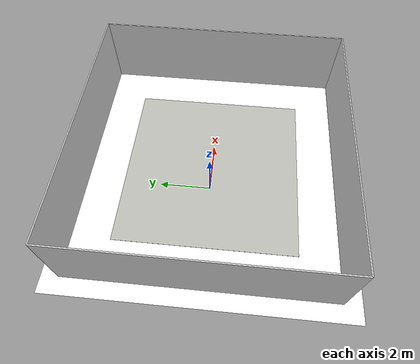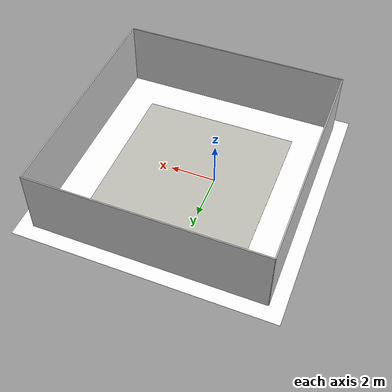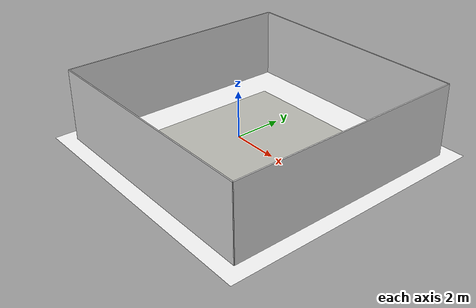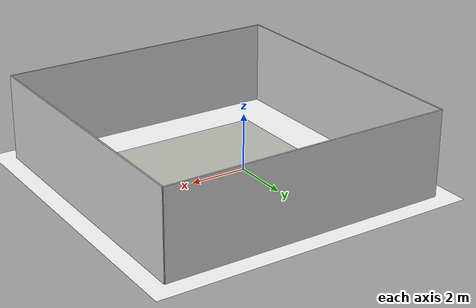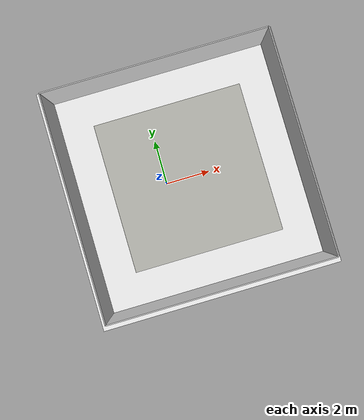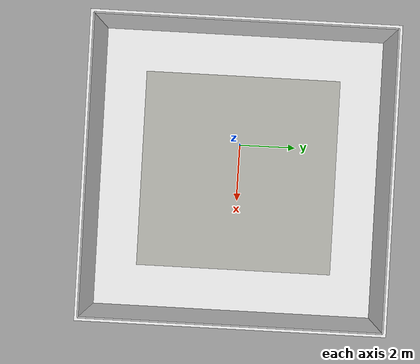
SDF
<sdf version="1.8">
 <world name="erc_world">
  <physics name="default" type="ode">
   <max_step_size>0.002</max_step_size>
   <real_time_factor>1.0</real_time_factor>
  </physics>
  <plugin filename="gz-sim-physics-system" name="gz::sim::systems::Physics"/>
  <plugin filename="gz-sim-user-commands-system" name="gz::sim::systems::UserCommands"/>
  <plugin filename="gz-sim-scene-broadcaster-system" name="gz::sim::systems::SceneBroadcaster"/>
  <plugin filename="gz-sim-sensors-system" name="gz::sim::systems::Sensors">
   <render_engine>ogre2</render_engine>
  </plugin>
  <plugin filename="gz-sim-contact-system" name="gz::sim::systems::Contact"/>
  <plugin filename="liberc-grasp-stabilizer-system.so" name="erc_bringup::GraspStabilizer"/>
  <plugin filename="gz-sim-imu-system" name="gz::sim::systems::Imu"/>
  <model name="ground_plane">
   <static>true</static>
   <pose>1.0 0 0 0 0 0</pose>
   <link name="link">
    <collision name="collision">
     <geometry><plane><normal>0 0 1</normal><size>10 10</size></plane></geometry>
    </collision>
    <visual name="visual">
     <geometry><plane><normal>0 0 1</normal><size>10 10</size></plane></geometry>
     <material>
      <ambient>1 1 1 1</ambient>
      <diffuse>1 1 1 1</diffuse>
      <pbr><metal><albedo_map>model://erc_description/materials/textures/arena_floor.png</albedo_map></metal></pbr>
     </material>
    </visual>
   </link>
  </model>
  <model name="arena_boundary">
   <static>true</static>
   <pose>1.0 0.0 0.001 0 0 0</pose>
   <link name="link">
    <visual name="floor_marking">
     <geometry><plane><normal>0 0 1</normal><size>7.0 7.0</size></plane></geometry>
     <material><ambient>0.75 0.75 0.72 1</ambient><diffuse>0.75 0.75 0.72 1</diffuse></material>
    </visual>
   </link>
  </model>
  <model name="wall_north">
   <static>true</static>
   <pose>1.0 5 1.5 0 0 0</pose>
   <link name="link">
    <collision name="collision"><geometry><box><size>10 0.05 3</size></box></geometry></collision>
    <visual name="visual">
     <geometry><box><size>10 0.05 3</size></box></geometry>
     <material><ambient>0.8 0.8 0.8 1</ambient><diffuse>0.8 0.8 0.8 1</diffuse></material>
    </visual>
   </link>
  </model>
  <model name="wall_south">
   <static>true</static>
   <pose>1.0 -5 1.5 0 0 0</pose>
   <link name="link">
    <collision name="collision"><geometry><box><size>10 0.05 3</size></box></geometry></collision>
    <visual name="visual">
     <geometry><box><size>10 0.05 3</size></box></geometry>
     <material><ambient>0.8 0.8 0.8 1</ambient><diffuse>0.8 0.8 0.8 1</diffuse></material>
    </visual>
   </link>
  </model>
  <model name="wall_east">
   <static>true</static>
   <pose>6.0 0 1.5 0 0 0</pose>
   <link name="link">
    <collision name="collision"><geometry><box><size>0.05 10 3</size></box></geometry></collision>
    <visual name="visual">
     <geometry><box><size>0.05 10 3</size></box></geometry>
     <material><ambient>0.8 0.8 0.8 1</ambient><diffuse>0.8 0.8 0.8 1</diffuse></material>
    </visual>
   </link>
  </model>
  <model name="wall_west">
   <static>true</static>
   <pose>-4.0 0 1.5 0 0 0</pose>
   <link name="link">
    <collision name="collision"><geometry><box><size>0.05 10 3</size></box></geometry></collision>
    <visual name="visual">
     <geometry><box><size>0.05 10 3</size></box></geometry>
     <material><ambient>0.8 0.8 0.8 1</ambient><diffuse>0.8 0.8 0.8 1</diffuse></material>
    </visual>
   </link>
  </model>
  <model name="start_zone">
   <static>true</static>
   <pose>0 0 0.002 0 0 0</pose>
   <link name="link">
    <visual name="visual">
     <geometry><plane><normal>0 0 1</normal><size>0.8 0.8</size></plane></geometry>
     <material><ambient>0.1 0.4 0.1 1</ambient><diffuse>0.1 0.4 0.1 1</diffuse></material>
    </visual>
   </link>
  </model>
  <scene><ambient>0.7 0.7 0.7 1</ambient><background>0.8 0.8 0.8 1</background><shadows>false</shadows></scene>
  <light name="light_front" type="directional">
   <pose>0 -10 5 0 0.5 0</pose>
   <diffuse>0.5 0.5 0.5 1</diffuse>
   <specular>0.1 0.1 0.1 1</specular>
   <direction>0 1 -0.5</direction>
   <cast_shadows>false</cast_shadows>
  </light>
  <light name="light_back" type="directional">
   <pose>0 10 5 0 -0.5 0</pose>
   <diffuse>0.5 0.5 0.5 1</diffuse>
   <specular>0.1 0.1 0.1 1</specular>
   <direction>0 -1 -0.5</direction>
   <cast_shadows>false</cast_shadows>
  </light>
  <light name="light_left" type="directional">
   <pose>-10 0 5 0 0 0.5</pose>
   <diffuse>0.5 0.5 0.5 1</diffuse>
   <specular>0.1 0.1 0.1 1</specular>
   <direction>1 0 -0.5</direction>
   <cast_shadows>false</cast_shadows>
  </light>
  <light name="light_right" type="directional">
   <pose>10 0 5 0 0 -0.5</pose>
   <diffuse>0.5 0.5 0.5 1</diffuse>
   <specular>0.1 0.1 0.1 1</specular>
   <direction>-1 0 -0.5</direction>
   <cast_shadows>false</cast_shadows>
  </light>
 </world>
</sdf>
